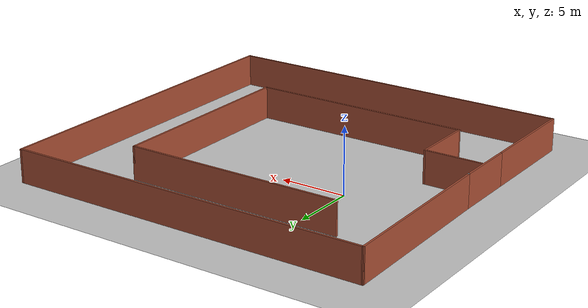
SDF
<sdf version="1.6">
 <world name="default">
  <model name="ground_plane">
   <static>1</static>
   <link name="link">
    <collision name="collision">
     <geometry><plane><normal>0 0 1</normal><size>100 100</size></plane></geometry>
     <surface><friction><ode><mu>100</mu><mu2>50</mu2></ode></friction></surface>
    </collision>
    <visual name="visual">
     <cast_shadows>0</cast_shadows>
     <geometry><plane><normal>0 0 1</normal><size>100 100</size></plane></geometry>
     <material>
      <script><uri>file://media/materials/scripts/gazebo.material</uri><name>Gazebo/Grey</name></script>
     </material>
    </visual>
   </link>
  </model>
  <model name="mazeWorld">
   <pose>5.63635 -2.54328 0 0 -0 0</pose>
   <link name="Wall_10">
    <collision name="Wall_10_Collision">
     <geometry><box><size>13.5523 0.15 2.5</size></box></geometry>
     <pose>0 0 1.25 0 -0 0</pose>
    </collision>
    <visual name="Wall_10_Visual">
     <pose>0 0 1.25 0 -0 0</pose>
     <geometry><box><size>13.5523 0.15 2.5</size></box></geometry>
     <material>
      <script><uri>file://media/materials/scripts/gazebo.material</uri><name>Gazebo/Bricks</name></script>
      <ambient>1 1 1 1</ambient>
     </material>
     <meta><layer>0</layer></meta>
    </visual>
    <pose>-13.6743 6.47431 0 0 -0 -1.55214</pose>
   </link>
   <link name="Wall_12">
    <collision name="Wall_12_Collision">
     <geometry><box><size>16.75 0.15 2.5</size></box></geometry>
     <pose>0 0 1.25 0 -0 0</pose>
    </collision>
    <visual name="Wall_12_Visual">
     <pose>0 0 1.25 0 -0 0</pose>
     <geometry><box><size>16.75 0.15 2.5</size></box></geometry>
     <material>
      <script><uri>file://media/materials/scripts/gazebo.material</uri><name>Gazebo/Bricks</name></script>
      <ambient>1 1 1 1</ambient>
     </material>
     <meta><layer>0</layer></meta>
    </visual>
    <pose>-0.493258 8.36187 0 0 -0 0</pose>
   </link>
   <link name="Wall_13">
    <collision name="Wall_13_Collision">
     <geometry><box><size>15.75 0.15 2.5</size></box></geometry>
     <pose>0 0 1.25 0 -0 0</pose>
    </collision>
    <visual name="Wall_13_Visual">
     <pose>0 0 1.25 0 -0 0</pose>
     <geometry><box><size>15.75 0.15 2.5</size></box></geometry>
     <material>
      <script><uri>file://media/materials/scripts/gazebo.material</uri><name>Gazebo/Bricks</name></script>
      <ambient>1 1 1 1</ambient>
     </material>
     <meta><layer>0</layer></meta>
    </visual>
    <pose>7.80674 0.561867 0 0 -0 -1.5708</pose>
   </link>
   <link name="Wall_14">
    <collision name="Wall_14_Collision">
     <geometry><box><size>17 0.15 2.5</size></box></geometry>
     <pose>0 0 1.25 0 -0 0</pose>
    </collision>
    <visual name="Wall_14_Visual">
     <pose>0 0 1.25 0 -0 0</pose>
     <geometry><box><size>17 0.15 2.5</size></box></geometry>
     <material>
      <script><uri>file://media/materials/scripts/gazebo.material</uri><name>Gazebo/Bricks</name></script>
      <ambient>1 1 1 1</ambient>
     </material>
     <meta><layer>0</layer></meta>
    </visual>
    <pose>-0.618258 -7.23813 0 0 -0 3.14159</pose>
   </link>
   <link name="Wall_15">
    <collision name="Wall_15_Collision">
     <geometry><box><size>5 0.15 2.5</size></box></geometry>
     <pose>0 0 1.25 0 -0 0</pose>
    </collision>
    <visual name="Wall_15_Visual">
     <pose>0 0 1.25 0 -0 0</pose>
     <geometry><box><size>5 0.15 2.5</size></box></geometry>
     <material>
      <script><uri>file://media/materials/scripts/gazebo.material</uri><name>Gazebo/Bricks</name></script>
      <ambient>1 1 1 1</ambient>
     </material>
     <meta><layer>0</layer></meta>
    </visual>
    <pose>-9.04326 -4.81313 0 0 -0 1.5708</pose>
   </link>
   <link name="Wall_16">
    <collision name="Wall_16_Collision">
     <geometry><box><size>4.5 0.15 2.5</size></box></geometry>
     <pose>0 0 1.25 0 -0 0</pose>
    </collision>
    <visual name="Wall_16_Visual">
     <pose>0 0 1.25 0 -0 0</pose>
     <geometry><box><size>4.5 0.15 2.5</size></box></geometry>
     <material>
      <script><uri>file://media/materials/scripts/gazebo.material</uri><name>Gazebo/Bricks</name></script>
      <ambient>1 1 1 1</ambient>
     </material>
     <meta><layer>0</layer></meta>
    </visual>
    <pose>-11.2183 -2.38813 0 0 -0 3.14159</pose>
   </link>
   <link name="Wall_2">
    <collision name="Wall_2_Collision">
     <geometry><box><size>4.75 0.15 2.5</size></box></geometry>
     <pose>0 0 1.25 0 -0 0</pose>
    </collision>
    <visual name="Wall_2_Visual">
     <pose>0 0 1.25 0 -0 0</pose>
     <geometry><box><size>4.75 0.15 2.5</size></box></geometry>
     <material>
      <script><uri>file://media/materials/scripts/gazebo.material</uri><name>Gazebo/Bricks</name></script>
      <ambient>1 1 1 1</ambient>
     </material>
     <meta><layer>0</layer></meta>
    </visual>
    <pose>-13.5493 -2.52569 0 0 -0 1.5708</pose>
   </link>
   <link name="Wall_3">
    <collision name="Wall_3_Collision">
     <geometry><box><size>0.15 0.15 2.5</size></box></geometry>
     <pose>0 0 1.25 0 -0 0</pose>
    </collision>
    <visual name="Wall_3_Visual">
     <pose>0 0 1.25 0 -0 0</pose>
     <geometry><box><size>0.15 0.15 2.5</size></box></geometry>
     <material>
      <script><uri>file://media/materials/scripts/gazebo.material</uri><name>Gazebo/Grey</name></script>
      <ambient>1 1 1 1</ambient>
     </material>
     <meta><layer>0</layer></meta>
    </visual>
    <pose>-13.5493 -0.225692 0 0 -0 0</pose>
   </link>
   <link name="Wall_4">
    <collision name="Wall_4_Collision">
     <geometry><box><size>0.15 0.15 2.5</size></box></geometry>
     <pose>0 0 1.25 0 -0 0</pose>
    </collision>
    <visual name="Wall_4_Visual">
     <pose>0 0 1.25 0 -0 0</pose>
     <geometry><box><size>0.15 0.15 2.5</size></box></geometry>
     <material>
      <script><uri>file://media/materials/scripts/gazebo.material</uri><name>Gazebo/Grey</name></script>
      <ambient>1 1 1 1</ambient>
     </material>
     <meta><layer>0</layer></meta>
    </visual>
    <pose>-13.5493 -0.225692 0 0 -0 0</pose>
   </link>
   <link name="Wall_6">
    <collision name="Wall_6_Collision">
     <geometry><box><size>8.5 0.15 2.5</size></box></geometry>
     <pose>0 0 1.25 0 -0 0</pose>
    </collision>
    <visual name="Wall_6_Visual">
     <pose>0 0 1.25 0 -0 0</pose>
     <geometry><box><size>8.5 0.15 2.5</size></box></geometry>
     <material>
      <script><uri>file://media/materials/scripts/gazebo.material</uri><name>Gazebo/Bricks</name></script>
      <ambient>1 1 1 1</ambient>
     </material>
     <meta><layer>0</layer></meta>
    </visual>
    <pose>-13.5493 -9.00069 0 0 -0 -1.5708</pose>
   </link>
   <link name="Wall_7">
    <collision name="Wall_7_Collision">
     <geometry><box><size>27.5 0.15 2.5</size></box></geometry>
     <pose>0 0 1.25 0 -0 0</pose>
    </collision>
    <visual name="Wall_7_Visual">
     <pose>0 0 1.25 0 -0 0</pose>
     <geometry><box><size>27.5 0.15 2.5</size></box></geometry>
     <material>
      <script><uri>file://media/materials/scripts/gazebo.material</uri><name>Gazebo/Bricks</name></script>
      <ambient>1 1 1 1</ambient>
     </material>
     <meta><layer>0</layer></meta>
    </visual>
    <pose>0.125693 -13.1757 0 0 -0 0</pose>
   </link>
   <link name="Wall_8">
    <collision name="Wall_8_Collision">
     <geometry><box><size>26.5 0.15 2.5</size></box></geometry>
     <pose>0 0 1.25 0 -0 0</pose>
    </collision>
    <visual name="Wall_8_Visual">
     <pose>0 0 1.25 0 -0 0</pose>
     <geometry><box><size>26.5 0.15 2.5</size></box></geometry>
     <material>
      <script><uri>file://media/materials/scripts/gazebo.material</uri><name>Gazebo/Bricks</name></script>
      <ambient>1 1 1 1</ambient>
     </material>
     <meta><layer>0</layer></meta>
    </visual>
    <pose>13.8007 -0.000692 0 0 -0 1.5708</pose>
   </link>
   <link name="Wall_9">
    <collision name="Wall_9_Collision">
     <geometry><box><size>27.75 0.15 2.5</size></box></geometry>
     <pose>0 0 1.25 0 -0 0</pose>
    </collision>
    <visual name="Wall_9_Visual">
     <pose>0 0 1.25 0 -0 0</pose>
     <geometry><box><size>27.75 0.15 2.5</size></box></geometry>
     <material>
      <script><uri>file://media/materials/scripts/gazebo.material</uri><name>Gazebo/Bricks</name></script>
      <ambient>1 1 1 1</ambient>
     </material>
     <meta><layer>0</layer></meta>
    </visual>
    <pose>0.000693 13.1743 0 0 -0 3.14159</pose>
   </link>
   <static>1</static>
  </model>
  <model name="cans_0">
   <link name="link">
    <inertial>
     <mass>0.362409</mass>
     <inertia>
      <ixx>0.00022647</ixx>
      <ixy>0</ixy>
      <ixz>0</ixz>
      <iyy>0.00022647</iyy>
      <iyz>0</iyz>
      <izz>0.0001015</izz>
     </inertia>
     <pose>0 0 0.2 0 -0 0</pose>
    </inertial>
    <self_collide>1</self_collide>
    <kinematic>1</kinematic>
    <visual name="ModelPreview_8::link::visual_1">
     <geometry><cylinder><radius>0.0236665</radius><length>0.0762781</length></cylinder></geometry>
     <material>
      <script><name>Gazebo/Grey</name><uri>file://media/materials/scripts/gazebo.material</uri></script>
      <shader type="vertex"><normal_map>__default__</normal_map></shader>
      <ambient>1 0.3 0.3 1</ambient>
      <diffuse>0.7 0.7 0.7 1</diffuse>
      <specular>0.01 0.01 0.01 1</specular>
      <emissive>0 0 0 1</emissive>
     </material>
    </visual>
    <visual name="visual">
     <geometry><cylinder><radius>0.0236665</radius><length>0.0762781</length></cylinder></geometry>
     <material>
      <script><name>Gazebo/Grey</name><uri>file://media/materials/scripts/gazebo.material</uri></script>
      <shader type="vertex"><normal_map>__default__</normal_map></shader>
      <ambient>1 0.3 0.3 1</ambient>
      <diffuse>0.7 0.7 0.7 1</diffuse>
      <specular>0.01 0.01 0.01 1</specular>
      <emissive>0 0 0 1</emissive>
     </material>
    </visual>
    <collision name="collision">
     <geometry><cylinder><radius>0.023667</radius><length>0.076278</length></cylinder></geometry>
     <surface>
      <friction>
       <ode><mu>1</mu><mu2>1</mu2><fdir1>0 0 0</fdir1><slip1>0</slip1><slip2>0</slip2></ode>
       <torsional>
        <coefficient>1</coefficient>
        <patch_radius>0</patch_radius>
        <surface_radius>0</surface_radius>
        <use_patch_radius>1</use_patch_radius>
        <ode><slip>0</slip></ode>
       </torsional>
      </friction>
      <bounce><restitution_coefficient>0</restitution_coefficient><threshold>1e+06</threshold></bounce>
      <contact>
       <collide_without_contact>0</collide_without_contact>
       <collide_without_contact_bitmask>1</collide_without_contact_bitmask>
       <collide_bitmask>1</collide_bitmask>
       <ode>
        <soft_cfm>0</soft_cfm>
        <soft_erp>0.2</soft_erp>
        <kp>1e+13</kp>
        <kd>1</kd>
        <max_vel>0.01</max_vel>
        <min_depth>0</min_depth>
       </ode>
       <bullet>
        <split_impulse>1</split_impulse>
        <split_impulse_penetration_threshold>-0.01</split_impulse_penetration_threshold>
        <soft_cfm>0</soft_cfm>
        <soft_erp>0.2</soft_erp>
        <kp>1e+13</kp>
        <kd>1</kd>
       </bullet>
      </contact>
     </surface>
    </collision>
   </link>
   <static>0</static>
   <pose>0.881663 4.99702 1.05 0 -0 0</pose>
  </model>
  <model name="cans_1">
   <link name="link">
    <inertial>
     <mass>0.362409</mass>
     <inertia>
      <ixx>0.00022647</ixx>
      <ixy>0</ixy>
      <ixz>0</ixz>
      <iyy>0.00022647</iyy>
      <iyz>0</iyz>
      <izz>0.0001015</izz>
     </inertia>
     <pose>0 0 0.2 0 -0 0</pose>
    </inertial>
    <self_collide>1</self_collide>
    <kinematic>1</kinematic>
    <visual name="ModelPreview_8::link::visual_1">
     <geometry><cylinder><radius>0.0236665</radius><length>0.0762781</length></cylinder></geometry>
     <material>
      <script><name>Gazebo/Grey</name><uri>file://media/materials/scripts/gazebo.material</uri></script>
      <shader type="vertex"><normal_map>__default__</normal_map></shader>
      <ambient>1 0.3 0.3 1</ambient>
      <diffuse>0.7 0.7 0.7 1</diffuse>
      <specular>0.01 0.01 0.01 1</specular>
      <emissive>0 0 0 1</emissive>
     </material>
    </visual>
    <visual name="visual">
     <geometry><cylinder><radius>0.0236665</radius><length>0.0762781</length></cylinder></geometry>
     <material>
      <script><name>Gazebo/Grey</name><uri>file://media/materials/scripts/gazebo.material</uri></script>
      <shader type="vertex"><normal_map>__default__</normal_map></shader>
      <ambient>1 0.3 0.3 1</ambient>
      <diffuse>0.7 0.7 0.7 1</diffuse>
      <specular>0.01 0.01 0.01 1</specular>
      <emissive>0 0 0 1</emissive>
     </material>
    </visual>
    <collision name="collision">
     <geometry><cylinder><radius>0.023667</radius><length>0.076278</length></cylinder></geometry>
     <surface>
      <friction>
       <ode><mu>1</mu><mu2>1</mu2><fdir1>0 0 0</fdir1><slip1>0</slip1><slip2>0</slip2></ode>
       <torsional>
        <coefficient>1</coefficient>
        <patch_radius>0</patch_radius>
        <surface_radius>0</surface_radius>
        <use_patch_radius>1</use_patch_radius>
        <ode><slip>0</slip></ode>
       </torsional>
      </friction>
      <bounce><restitution_coefficient>0</restitution_coefficient><threshold>1e+06</threshold></bounce>
      <contact>
       <collide_without_contact>0</collide_without_contact>
       <collide_without_contact_bitmask>1</collide_without_contact_bitmask>
       <collide_bitmask>1</collide_bitmask>
       <ode>
        <soft_cfm>0</soft_cfm>
        <soft_erp>0.2</soft_erp>
        <kp>1e+13</kp>
        <kd>1</kd>
        <max_vel>0.01</max_vel>
        <min_depth>0</min_depth>
       </ode>
       <bullet>
        <split_impulse>1</split_impulse>
        <split_impulse_penetration_threshold>-0.01</split_impulse_penetration_threshold>
        <soft_cfm>0</soft_cfm>
        <soft_erp>0.2</soft_erp>
        <kp>1e+13</kp>
        <kd>1</kd>
       </bullet>
      </contact>
     </surface>
    </collision>
   </link>
   <static>0</static>
   <pose>1.0184 5.04738 1.05 0 -0 0</pose>
  </model>
  <model name="cans_2">
   <link name="link">
    <inertial>
     <mass>0.362409</mass>
     <inertia>
      <ixx>0.00022647</ixx>
      <ixy>0</ixy>
      <ixz>0</ixz>
      <iyy>0.00022647</iyy>
      <iyz>0</iyz>
      <izz>0.0001015</izz>
     </inertia>
     <pose>0 0 0.2 0 -0 0</pose>
    </inertial>
    <self_collide>1</self_collide>
    <kinematic>1</kinematic>
    <visual name="ModelPreview_8::link::visual_1">
     <geometry><cylinder><radius>0.0236665</radius><length>0.0762781</length></cylinder></geometry>
     <material>
      <script><name>Gazebo/Grey</name><uri>file://media/materials/scripts/gazebo.material</uri></script>
      <shader type="vertex"><normal_map>__default__</normal_map></shader>
      <ambient>1 0.3 0.3 1</ambient>
      <diffuse>0.7 0.7 0.7 1</diffuse>
      <specular>0.01 0.01 0.01 1</specular>
      <emissive>0 0 0 1</emissive>
     </material>
    </visual>
    <visual name="visual">
     <geometry><cylinder><radius>0.0236665</radius><length>0.0762781</length></cylinder></geometry>
     <material>
      <script><name>Gazebo/Grey</name><uri>file://media/materials/scripts/gazebo.material</uri></script>
      <shader type="vertex"><normal_map>__default__</normal_map></shader>
      <ambient>1 0.3 0.3 1</ambient>
      <diffuse>0.7 0.7 0.7 1</diffuse>
      <specular>0.01 0.01 0.01 1</specular>
      <emissive>0 0 0 1</emissive>
     </material>
    </visual>
    <collision name="collision">
     <geometry><cylinder><radius>0.023667</radius><length>0.076278</length></cylinder></geometry>
     <surface>
      <friction>
       <ode><mu>1</mu><mu2>1</mu2><fdir1>0 0 0</fdir1><slip1>0</slip1><slip2>0</slip2></ode>
       <torsional>
        <coefficient>1</coefficient>
        <patch_radius>0</patch_radius>
        <surface_radius>0</surface_radius>
        <use_patch_radius>1</use_patch_radius>
        <ode><slip>0</slip></ode>
       </torsional>
      </friction>
      <bounce><restitution_coefficient>0</restitution_coefficient><threshold>1e+06</threshold></bounce>
      <contact>
       <collide_without_contact>0</collide_without_contact>
       <collide_without_contact_bitmask>1</collide_without_contact_bitmask>
       <collide_bitmask>1</collide_bitmask>
       <ode>
        <soft_cfm>0</soft_cfm>
        <soft_erp>0.2</soft_erp>
        <kp>1e+13</kp>
        <kd>1</kd>
        <max_vel>0.01</max_vel>
        <min_depth>0</min_depth>
       </ode>
       <bullet>
        <split_impulse>1</split_impulse>
        <split_impulse_penetration_threshold>-0.01</split_impulse_penetration_threshold>
        <soft_cfm>0</soft_cfm>
        <soft_erp>0.2</soft_erp>
        <kp>1e+13</kp>
        <kd>1</kd>
       </bullet>
      </contact>
     </surface>
    </collision>
   </link>
   <static>0</static>
   <pose>1.06636 4.99391 1.05 0 -0 0</pose>
  </model>
  <model name="decoy">
   <link name="link">
    <inertial>
     <mass>10</mass>
     <inertia>
      <ixx>0.00022647</ixx>
      <ixy>0</ixy>
      <ixz>0</ixz>
      <iyy>0.00022647</iyy>
      <iyz>0</iyz>
      <izz>0.0001015</izz>
     </inertia>
     <pose>0 0 1 0 -0 0</pose>
    </inertial>
    <self_collide>1</self_collide>
    <kinematic>1</kinematic>
    <visual name="visual">
     <geometry><mesh><uri>model://decoys/meshes/decoymesh.dae</uri><scale>1 1 1</scale></mesh></geometry>
     <material>
      <script>
       <uri>model://decoys/materials/scripts</uri>
       <uri>model://decoys/materials/textures</uri>
       <name>decoy</name>
      </script>
      <shader type="vertex"><normal_map>__default__</normal_map></shader>
      <ambient>1 0.3 0.3 1</ambient>
      <diffuse>0.7 0.7 0.7 1</diffuse>
      <specular>0.01 0.01 0.01 1</specular>
      <emissive>0 0 0 1</emissive>
     </material>
    </visual>
    <collision name="collision">
     <geometry><mesh><uri>model://decoys/meshes/decoymesh.dae</uri><scale>1 1 1</scale></mesh></geometry>
     <surface>
      <friction>
       <ode><mu>1</mu><mu2>1</mu2><fdir1>0 0 0</fdir1><slip1>0</slip1><slip2>0</slip2></ode>
       <torsional>
        <coefficient>1</coefficient>
        <patch_radius>0</patch_radius>
        <surface_radius>0</surface_radius>
        <use_patch_radius>1</use_patch_radius>
        <ode><slip>0</slip></ode>
       </torsional>
      </friction>
      <bounce><restitution_coefficient>0</restitution_coefficient><threshold>1e+06</threshold></bounce>
      <contact>
       <collide_without_contact>0</collide_without_contact>
       <collide_without_contact_bitmask>1</collide_without_contact_bitmask>
       <collide_bitmask>1</collide_bitmask>
       <ode>
        <soft_cfm>0</soft_cfm>
        <soft_erp>0.2</soft_erp>
        <kp>1e+13</kp>
        <kd>1</kd>
        <max_vel>0.01</max_vel>
        <min_depth>0</min_depth>
       </ode>
       <bullet>
        <split_impulse>1</split_impulse>
        <split_impulse_penetration_threshold>-0.01</split_impulse_penetration_threshold>
        <soft_cfm>0</soft_cfm>
        <soft_erp>0.2</soft_erp>
        <kp>1e+13</kp>
        <kd>1</kd>
       </bullet>
      </contact>
     </surface>
    </collision>
   </link>
   <static>0</static>
   <pose>3 5 1 0 -0 0</pose>
  </model>
 </world>
</sdf>
